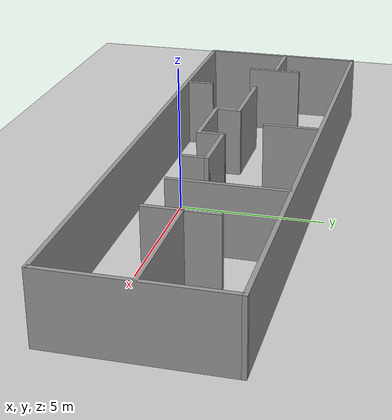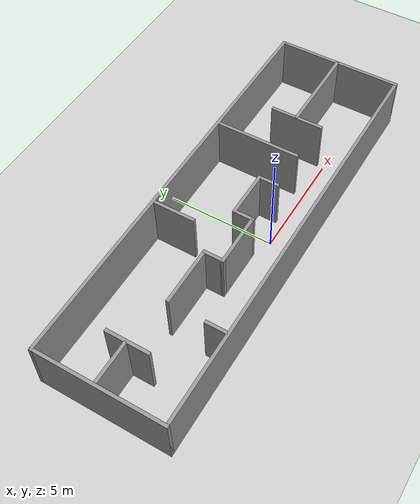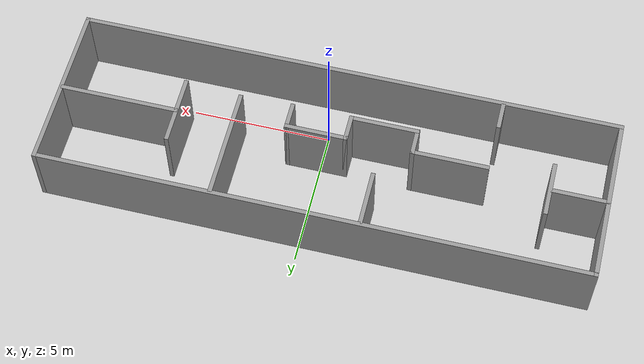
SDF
<sdf version="1.6">
 <world name="default">
  <model name="ground_plane">
   <static>1</static>
   <link name="link">
    <collision name="collision">
     <geometry><plane><normal>0 0 1</normal><size>100 100</size></plane></geometry>
     <surface><friction><ode><mu>100</mu><mu2>50</mu2></ode></friction></surface>
    </collision>
    <visual name="visual">
     <cast_shadows>0</cast_shadows>
     <geometry><plane><normal>0 0 1</normal><size>100 100</size></plane></geometry>
     <material>
      <script><uri>file://media/materials/scripts/gazebo.material</uri><name>Gazebo/Grey</name></script>
     </material>
    </visual>
   </link>
  </model>
  <light name="sun" type="directional">
   <pose>0 0 10 0 -0 0</pose>
   <diffuse>0.8 0.8 0.8 1</diffuse>
   <specular>0.2 0.2 0.2 1</specular>
   <attenuation>
    <range>1000</range>
    <constant>0.9</constant>
    <linear>0.01</linear>
    <quadratic>0.001</quadratic>
   </attenuation>
   <direction>-0.5 0.1 -0.9</direction>
  </light>
  <gravity>0 0 -9.8</gravity>
  <magnetic_field>6e-06 2.3e-05 -4.2e-05</magnetic_field>
  <atmosphere type="adiabatic"/>
  <physics name="default_physics" default="0" type="ode">
   <max_step_size>0.001</max_step_size>
   <real_time_factor>1</real_time_factor>
   <real_time_update_rate>1000</real_time_update_rate>
  </physics>
  <scene><ambient>0.4 0.4 0.4 1</ambient><background>0.7 0.7 0.7 1</background><shadows>1</shadows></scene>
  <spherical_coordinates>
   <surface_model>EARTH_WGS84</surface_model>
   <latitude_deg>0</latitude_deg>
   <longitude_deg>0</longitude_deg>
   <elevation>0</elevation>
   <heading_deg>0</heading_deg>
  </spherical_coordinates>
  <model name="my_house">
   <pose>-0.385045 1.50715 0 0 -0 0</pose>
   <link name="Wall_100">
    <collision name="Wall_100_Collision">
     <geometry><box><size>4 0.15 2.5</size></box></geometry>
     <pose>0 0 1.25 0 -0 0</pose>
    </collision>
    <visual name="Wall_100_Visual">
     <pose>0 0 1.25 0 -0 0</pose>
     <geometry><box><size>4 0.15 2.5</size></box></geometry>
     <material>
      <script><uri>file://media/materials/scripts/gazebo.material</uri><name>Gazebo/Grey</name></script>
      <ambient>1 1 1 1</ambient>
     </material>
     <meta><layer>0</layer></meta>
    </visual>
    <pose>3.45015 0.916302 0 0 -0 1.5708</pose>
   </link>
   <link name="Wall_102">
    <collision name="Wall_102_Collision">
     <geometry><box><size>2.75 0.15 2.5</size></box></geometry>
     <pose>0 0 1.25 0 -0 0</pose>
    </collision>
    <visual name="Wall_102_Visual">
     <pose>0 0 1.25 0 -0 0</pose>
     <geometry><box><size>2.75 0.15 2.5</size></box></geometry>
     <material>
      <script><uri>file://media/materials/scripts/gazebo.material</uri><name>Gazebo/Grey</name></script>
      <ambient>1 1 1 1</ambient>
     </material>
     <meta><layer>0</layer></meta>
    </visual>
    <pose>-4.16218 -0.233051 0 0 -0 3.14159</pose>
   </link>
   <link name="Wall_104">
    <collision name="Wall_104_Collision">
     <geometry><box><size>1 0.15 2.5</size></box></geometry>
     <pose>0 0 1.25 0 -0 0</pose>
    </collision>
    <visual name="Wall_104_Visual">
     <pose>0 0 1.25 0 -0 0</pose>
     <geometry><box><size>1 0.15 2.5</size></box></geometry>
     <material>
      <script><uri>file://media/materials/scripts/gazebo.material</uri><name>Gazebo/Grey</name></script>
      <ambient>1 1 1 1</ambient>
     </material>
     <meta><layer>0</layer></meta>
    </visual>
    <pose>-5.53822 -2.39354 0 0 -0 1.5708</pose>
   </link>
   <link name="Wall_74">
    <collision name="Wall_74_Collision">
     <geometry><box><size>19.5 0.15 2.5</size></box></geometry>
     <pose>0 0 1.25 0 -0 0</pose>
    </collision>
    <visual name="Wall_74_Visual">
     <pose>0 0 1.25 0 -0 0</pose>
     <geometry><box><size>19.5 0.15 2.5</size></box></geometry>
     <material>
      <script><uri>file://media/materials/scripts/gazebo.material</uri><name>Gazebo/Grey</name></script>
      <ambient>1 1 1 1</ambient>
     </material>
     <meta><layer>0</layer></meta>
    </visual>
    <pose>0 -2.925 0 0 -0 0</pose>
   </link>
   <link name="Wall_75">
    <collision name="Wall_75_Collision">
     <geometry><box><size>6 0.15 2.5</size></box></geometry>
     <pose>0 0 1.25 0 -0 0</pose>
    </collision>
    <visual name="Wall_75_Visual">
     <pose>0 0 1.25 0 -0 0</pose>
     <geometry><box><size>6 0.15 2.5</size></box></geometry>
     <material>
      <script><uri>file://media/materials/scripts/gazebo.material</uri><name>Gazebo/Grey</name></script>
      <ambient>1 1 1 1</ambient>
     </material>
     <meta><layer>0</layer></meta>
    </visual>
    <pose>9.675 0 0 0 -0 1.5708</pose>
   </link>
   <link name="Wall_76">
    <collision name="Wall_76_Collision">
     <geometry><box><size>19.5 0.15 2.5</size></box></geometry>
     <pose>0 0 1.25 0 -0 0</pose>
    </collision>
    <visual name="Wall_76_Visual">
     <pose>0 0 1.25 0 -0 0</pose>
     <geometry><box><size>19.5 0.15 2.5</size></box></geometry>
     <material>
      <script><uri>file://media/materials/scripts/gazebo.material</uri><name>Gazebo/Grey</name></script>
      <ambient>1 1 1 1</ambient>
     </material>
     <meta><layer>0</layer></meta>
    </visual>
    <pose>0 2.925 0 0 -0 3.14159</pose>
   </link>
   <link name="Wall_77">
    <collision name="Wall_77_Collision">
     <geometry><box><size>6 0.15 2.5</size></box></geometry>
     <pose>0 0 1.25 0 -0 0</pose>
    </collision>
    <visual name="Wall_77_Visual">
     <pose>0 0 1.25 0 -0 0</pose>
     <geometry><box><size>6 0.15 2.5</size></box></geometry>
     <material>
      <script><uri>file://media/materials/scripts/gazebo.material</uri><name>Gazebo/Grey</name></script>
      <ambient>1 1 1 1</ambient>
     </material>
     <meta><layer>0</layer></meta>
    </visual>
    <pose>-9.675 0 0 0 0 -1.5708</pose>
   </link>
   <link name="Wall_79">
    <collision name="Wall_79_Collision">
     <geometry><box><size>2 0.15 2.5</size></box></geometry>
     <pose>0 0 1.25 0 -0 0</pose>
    </collision>
    <visual name="Wall_79_Visual">
     <pose>0 0 1.25 0 -0 0</pose>
     <geometry><box><size>2 0.15 2.5</size></box></geometry>
     <material>
      <script><uri>file://media/materials/scripts/gazebo.material</uri><name>Gazebo/Grey</name></script>
      <ambient>1 1 1 1</ambient>
     </material>
     <meta><layer>0</layer></meta>
    </visual>
    <pose>-8.71958 0.131959 0 0 -0 0</pose>
   </link>
   <link name="Wall_81">
    <collision name="Wall_81_Collision">
     <geometry><box><size>2 0.15 2.5</size></box></geometry>
     <pose>0 0 1.25 0 -0 0</pose>
    </collision>
    <visual name="Wall_81_Visual">
     <pose>0 0 1.25 0 -0 0</pose>
     <geometry><box><size>2 0.15 2.5</size></box></geometry>
     <material>
      <script><uri>file://media/materials/scripts/gazebo.material</uri><name>Gazebo/Grey</name></script>
      <ambient>1 1 1 1</ambient>
     </material>
     <meta><layer>0</layer></meta>
    </visual>
    <pose>-7.68265 0.089067 0 0 0 -1.5708</pose>
   </link>
   <link name="Wall_83">
    <collision name="Wall_83_Collision">
     <geometry><box><size>4.25 0.15 2.5</size></box></geometry>
     <pose>0 0 1.25 0 -0 0</pose>
    </collision>
    <visual name="Wall_83_Visual">
     <pose>0 0 1.25 0 -0 0</pose>
     <geometry><box><size>4.25 0.15 2.5</size></box></geometry>
     <material>
      <script><uri>file://media/materials/scripts/gazebo.material</uri><name>Gazebo/Grey</name></script>
      <ambient>1 1 1 1</ambient>
     </material>
     <meta><layer>0</layer></meta>
    </visual>
    <pose>7.55969 0.055915 0 0 -0 3.14159</pose>
   </link>
   <link name="Wall_86">
    <collision name="Wall_86_Collision">
     <geometry><box><size>2.5 0.15 2.5</size></box></geometry>
     <pose>0 0 1.25 0 -0 0</pose>
    </collision>
    <visual name="Wall_86_Visual">
     <pose>0 0 1.25 0 -0 0</pose>
     <geometry><box><size>2.5 0.15 2.5</size></box></geometry>
     <material>
      <script><uri>file://media/materials/scripts/gazebo.material</uri><name>Gazebo/Grey</name></script>
      <ambient>1 1 1 1</ambient>
     </material>
     <meta><layer>0</layer></meta>
    </visual>
    <pose>5.47292 0.029424 0 0 -0 1.5708</pose>
   </link>
   <link name="Wall_92">
    <collision name="Wall_92_Collision">
     <geometry><box><size>1 0.15 2.5</size></box></geometry>
     <pose>0 0 1.25 0 -0 0</pose>
    </collision>
    <visual name="Wall_92_Visual">
     <pose>0 0 1.25 0 -0 0</pose>
     <geometry><box><size>1 0.15 2.5</size></box></geometry>
     <material>
      <script><uri>file://media/materials/scripts/gazebo.material</uri><name>Gazebo/Grey</name></script>
      <ambient>1 1 1 1</ambient>
     </material>
     <meta><layer>0</layer></meta>
    </visual>
    <pose>-2.86218 -0.658051 0 0 0 -1.5708</pose>
   </link>
   <link name="Wall_93">
    <collision name="Wall_93_Collision">
     <geometry><box><size>2.5 0.15 2.5</size></box></geometry>
     <pose>0 0 1.25 0 -0 0</pose>
    </collision>
    <visual name="Wall_93_Visual">
     <pose>0 0 1.25 0 -0 0</pose>
     <geometry><box><size>2.5 0.15 2.5</size></box></geometry>
     <material>
      <script><uri>file://media/materials/scripts/gazebo.material</uri><name>Gazebo/Grey</name></script>
      <ambient>1 1 1 1</ambient>
     </material>
     <meta><layer>0</layer></meta>
    </visual>
    <pose>-1.68718 -1.08305 0 0 -0 0</pose>
   </link>
   <link name="Wall_94">
    <collision name="Wall_94_Collision">
     <geometry><box><size>1 0.15 2.5</size></box></geometry>
     <pose>0 0 1.25 0 -0 0</pose>
    </collision>
    <visual name="Wall_94_Visual">
     <pose>0 0 1.25 0 -0 0</pose>
     <geometry><box><size>1 0.15 2.5</size></box></geometry>
     <material>
      <script><uri>file://media/materials/scripts/gazebo.material</uri><name>Gazebo/Grey</name></script>
      <ambient>1 1 1 1</ambient>
     </material>
     <meta><layer>0</layer></meta>
    </visual>
    <pose>-0.512176 -0.658051 0 0 -0 1.5708</pose>
   </link>
   <link name="Wall_95">
    <collision name="Wall_95_Collision">
     <geometry><box><size>2.25 0.15 2.5</size></box></geometry>
     <pose>0 0 1.25 0 -0 0</pose>
    </collision>
    <visual name="Wall_95_Visual">
     <pose>0 0 1.25 0 -0 0</pose>
     <geometry><box><size>2.25 0.15 2.5</size></box></geometry>
     <material>
      <script><uri>file://media/materials/scripts/gazebo.material</uri><name>Gazebo/Grey</name></script>
      <ambient>1 1 1 1</ambient>
     </material>
     <meta><layer>0</layer></meta>
    </visual>
    <pose>0.537824 -0.233051 0 0 -0 0</pose>
   </link>
   <link name="Wall_96">
    <collision name="Wall_96_Collision">
     <geometry><box><size>1 0.15 2.5</size></box></geometry>
     <pose>0 0 1.25 0 -0 0</pose>
    </collision>
    <visual name="Wall_96_Visual">
     <pose>0 0 1.25 0 -0 0</pose>
     <geometry><box><size>1 0.15 2.5</size></box></geometry>
     <material>
      <script><uri>file://media/materials/scripts/gazebo.material</uri><name>Gazebo/Grey</name></script>
      <ambient>1 1 1 1</ambient>
     </material>
     <meta><layer>0</layer></meta>
    </visual>
    <pose>1.58782 -0.658051 0 0 0 -1.5708</pose>
   </link>
   <link name="Wall_98">
    <collision name="Wall_98_Collision">
     <geometry><box><size>2 0.15 2.5</size></box></geometry>
     <pose>0 0 1.25 0 -0 0</pose>
    </collision>
    <visual name="Wall_98_Visual">
     <pose>0 0 1.25 0 -0 0</pose>
     <geometry><box><size>2 0.15 2.5</size></box></geometry>
     <material>
      <script><uri>file://media/materials/scripts/gazebo.material</uri><name>Gazebo/Grey</name></script>
      <ambient>1 1 1 1</ambient>
     </material>
     <meta><layer>0</layer></meta>
    </visual>
    <pose>-1.75124 1.90865 0 0 -0 1.5708</pose>
   </link>
   <static>1</static>
  </model>
  <plugin filename="libcollision_map_creator.so" name="collision_map_creator"/>
 </world>
</sdf>
